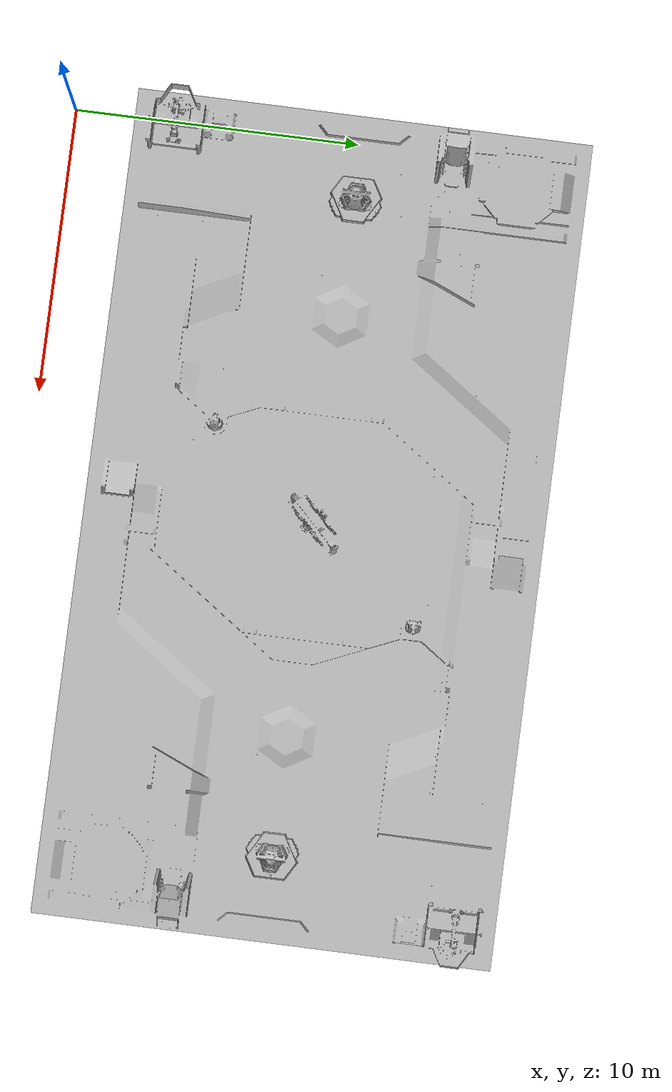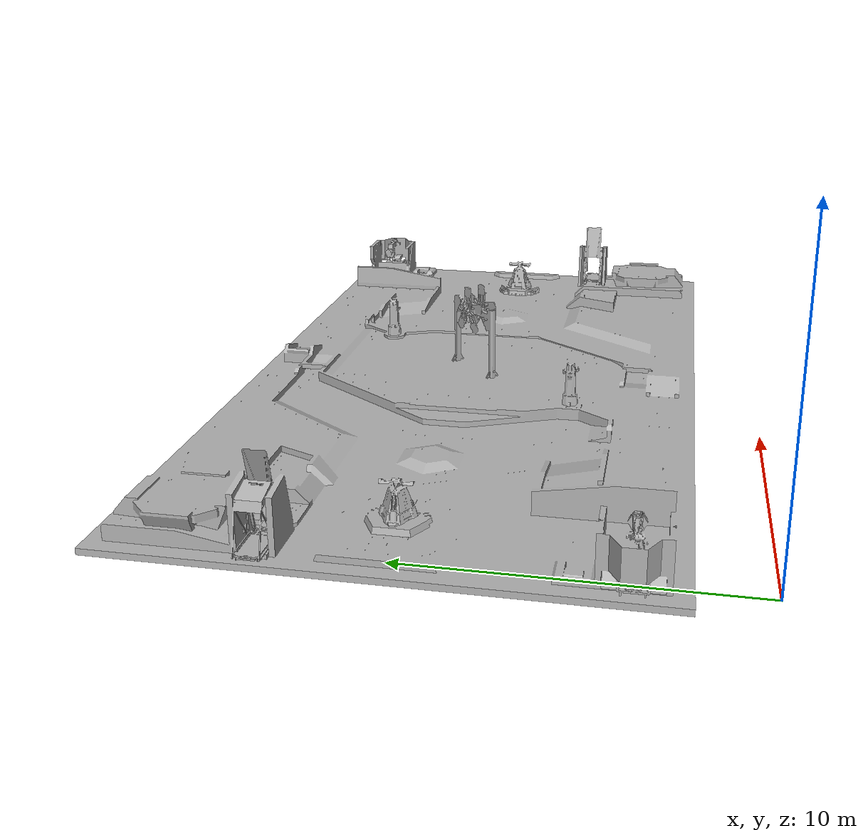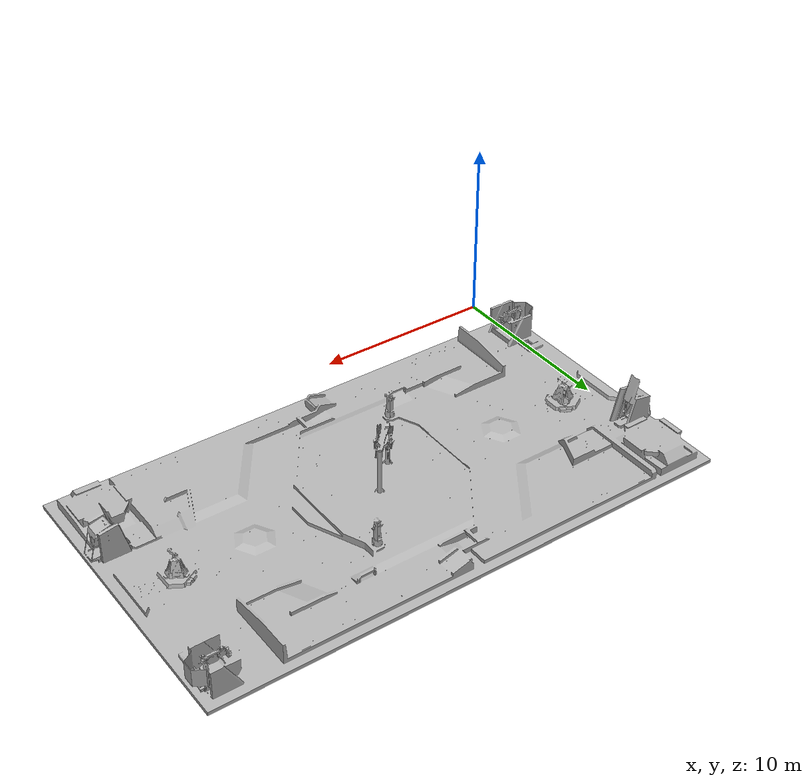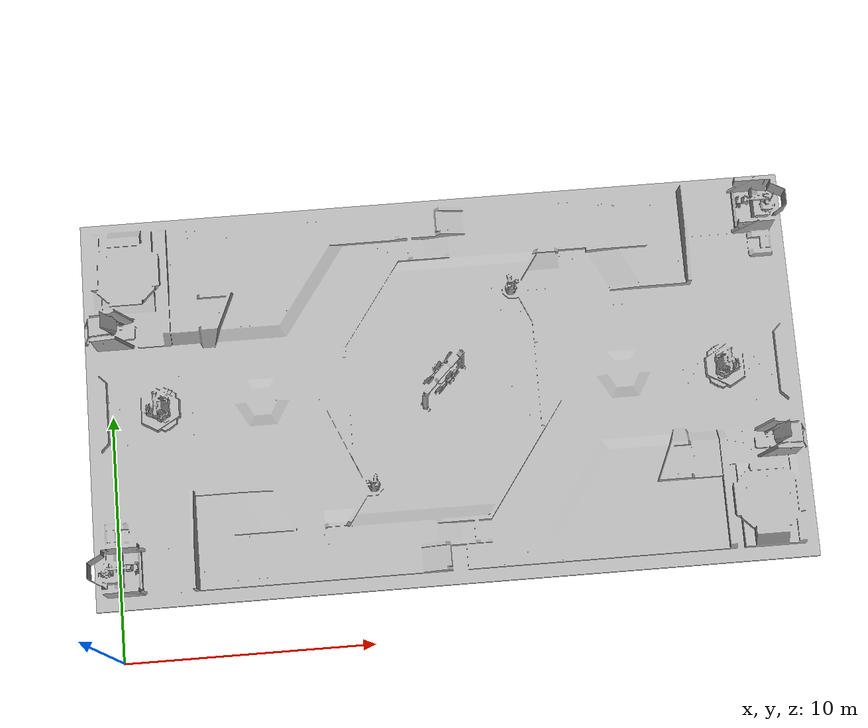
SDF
<?xml version='1.0'?>
<sdf version='1.6'>
  <model name='rmuc_2026'>
    <static>true</static>
    <link name='body'>
      <pose frame=''>13.5 8.5 1.80 0 0 0</pose>
      <self_collide>0</self_collide>
      <kinematic>0</kinematic>
      <gravity>1</gravity>
      <visual name='visual'>
        <geometry>
          <mesh>
            <uri>model://rmuc_2026/meshes/RMUC_2026.stl</uri>
            <scale>0.1 0.1 0.1</scale>
          </mesh>
        </geometry>
        <material>
          <ambient>0.3 0.3 0.3 1</ambient>
          <diffuse>0.7 0.7 0.7 1</diffuse>
          <specular>0.01 0.01 0.01 1</specular>
        </material>
      </visual>
      <collision name='collision'>
        <geometry>
          <mesh>
            <uri>model://rmuc_2026/meshes/RMUC_2026.stl</uri>
            <scale>0.1 0.1 0.1</scale>
          </mesh>
        </geometry>
      </collision>
    </link>
  </model>
</sdf>
